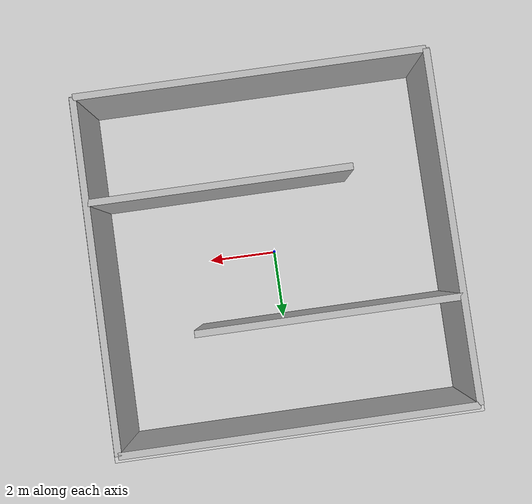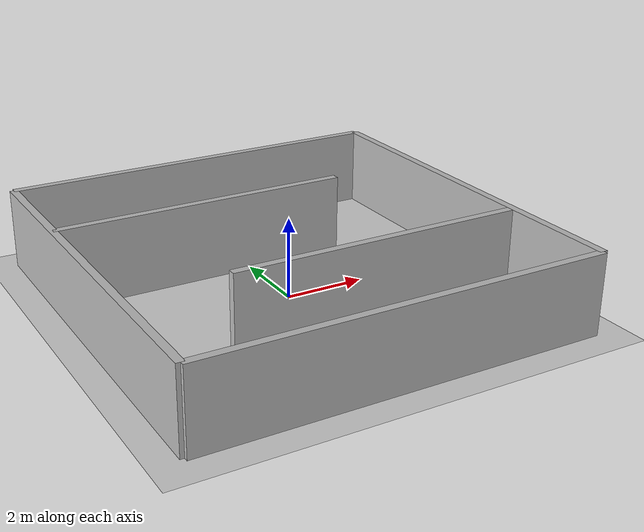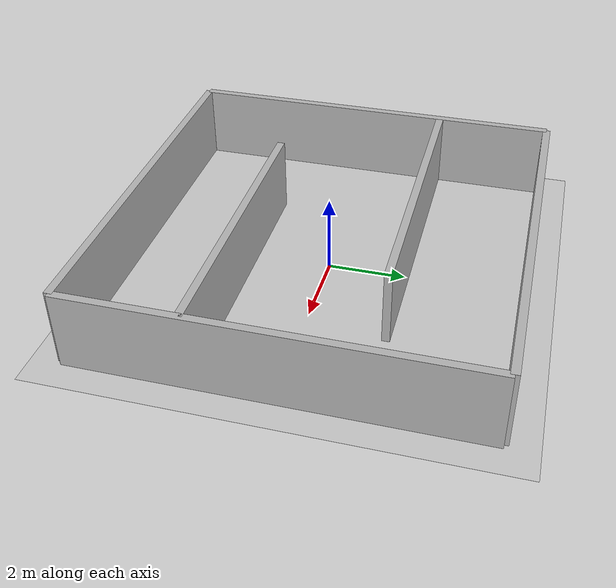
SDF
<sdf version="1.6">
 <world name="default">
  <physics type="ode">
   <gravity>0 0 -9.81</gravity>
   <ode>
    <solver><type>quick</type><iters>20</iters><sor>1.0</sor></solver>
    <constraints>
     <cfm>0.0</cfm>
     <erp>0.2</erp>
     <contact_max_correcting_vel>100.0</contact_max_correcting_vel>
     <contact_surface_layer>0.0</contact_surface_layer>
    </constraints>
   </ode>
   <real_time_update_rate>200</real_time_update_rate>
   <max_step_size>0.005</max_step_size>
  </physics>
  <scene>
   <ambient>0.8 0.8 0.8 1.0</ambient>
   <background>0.7 0.7 0.7 1.0</background>
   <shadows>true</shadows>
  </scene>
  <include><uri>model://sun</uri></include>
  <include><uri>model://ground_plane</uri></include>
  <model name="wall_bottom">
   <pose>0 -5 1 0 0 0</pose>
   <static>true</static>
   <link name="link">
    <collision name="collision"><geometry><box><size>10 0.2 2</size></box></geometry></collision>
    <visual name="visual"><geometry><box><size>10 0.2 2</size></box></geometry></visual>
   </link>
  </model>
  <model name="wall_top">
   <pose>0 5 1 0 0 0</pose>
   <static>true</static>
   <link name="link">
    <collision name="collision"><geometry><box><size>10 0.2 2</size></box></geometry></collision>
    <visual name="visual"><geometry><box><size>10 0.2 2</size></box></geometry></visual>
   </link>
  </model>
  <model name="wall_left">
   <pose>-5 0 1 0 0 1.5708</pose>
   <static>true</static>
   <link name="link">
    <collision name="collision"><geometry><box><size>10 0.2 2</size></box></geometry></collision>
    <visual name="visual"><geometry><box><size>10 0.2 2</size></box></geometry></visual>
   </link>
  </model>
  <model name="wall_right">
   <pose>5 0 1 0 0 1.5708</pose>
   <static>true</static>
   <link name="link">
    <collision name="collision"><geometry><box><size>10 0.2 2</size></box></geometry></collision>
    <visual name="visual"><geometry><box><size>10 0.2 2</size></box></geometry></visual>
   </link>
  </model>
  <model name="inner_wall_1">
   <pose>-1.25 2.0 1 0 0 0</pose>
   <static>true</static>
   <link name="link">
    <collision name="collision"><geometry><box><size>7.5 0.2 2</size></box></geometry></collision>
    <visual name="visual"><geometry><box><size>7.5 0.2 2</size></box></geometry></visual>
   </link>
  </model>
  <model name="inner_wall_2">
   <pose>1.25 -2.0 1 0 0 0</pose>
   <static>true</static>
   <link name="link">
    <collision name="collision"><geometry><box><size>7.5 0.2 2</size></box></geometry></collision>
    <visual name="visual"><geometry><box><size>7.5 0.2 2</size></box></geometry></visual>
   </link>
  </model>
 </world>
</sdf>
